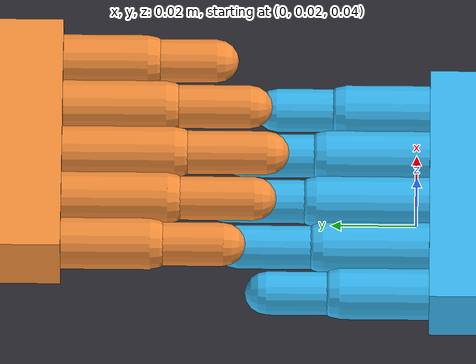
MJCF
<mujoco model="amazinghand_5finger_docking_v4">
  <compiler angle="radian" />
  <option gravity="0 0 -9.81" timestep="0.002" />

  <default>
    <geom density="600" friction="1.0 0.02 0.001" solref="0.005 1" solimp="0.98 0.995 0.0003" />
    <joint damping="0.15" frictionloss="0.01" />
  </default>

  <worldbody>
    <light name="light_top" pos="0 0 1.2" dir="0 0 -1" diffuse="0.8 0.8 0.8" directional="true" />
    <light name="light_side" pos="0.8 -0.6 0.6" dir="-0.8 0.6 -0.4" diffuse="0.5 0.5 0.5" directional="true" />
    <camera name="cam_dock" mode="fixed" pos="0.55 -0.55 0.35" xyaxes="0.707 0.707 0 -0.25 0.25 0.935" />

    <geom name="floor" type="plane" size="1 1 0.01" pos="0 0 -0.15" rgba="0.15 0.15 0.18 1" contype="0" conaffinity="0" />

    <body name="obstacle" mocap="true" pos="0 5 0.05">
      <geom name="obstacle_geom" type="box" size="0.06 0.004 0.05" rgba="0.9 0.25 0.2 0.55" />
    </body>

    <body name="handA_wrist" pos="0 0 0.05">
      <joint name="handA_approach" type="slide" axis="0 1 0" damping="1.0" />
      <inertial pos="0 0 0" mass="0.35" diaginertia="0.0006 0.0006 0.0006" />
      <geom name="handA_palm" type="box" size="0.032 0.017 0.008" rgba="0.22 0.74 0.97 1" />
      <body name="handA_finger_thumb" pos="-0.026 0.017 0">
        <joint name="handA_thumb_mcp" type="hinge" axis="1 0 0" range="0 1.7" />
        <geom name="handA_thumb_prox_geom" type="capsule" fromto="0 0 0 0 0.0209 0" size="0.006" rgba="0.22 0.74 0.97 1" />
        <body name="handA_thumb_distal" pos="0 0.0209 0">
          <joint name="handA_thumb_pip" type="hinge" axis="1 0 0" range="0 1.7" />
          <geom name="handA_thumb_dist_geom" type="capsule" fromto="0 0 0 0 0.0171 0" size="0.0051" rgba="0.22 0.74 0.97 1" />
        </body>
      </body>
      <body name="handA_finger_index" pos="-0.013 0.017 0">
        <joint name="handA_index_mcp" type="hinge" axis="1 0 0" range="0 1.7" />
        <geom name="handA_index_prox_geom" type="capsule" fromto="0 0 0 0 0.0248 0" size="0.006" rgba="0.22 0.74 0.97 1" />
        <body name="handA_index_distal" pos="0 0.0248 0">
          <joint name="handA_index_pip" type="hinge" axis="1 0 0" range="0 1.7" />
          <geom name="handA_index_dist_geom" type="capsule" fromto="0 0 0 0 0.0203 0" size="0.0051" rgba="0.22 0.74 0.97 1" />
        </body>
      </body>
      <body name="handA_finger_middle" pos="0.0 0.017 0">
        <joint name="handA_middle_mcp" type="hinge" axis="1 0 0" range="0 1.7" />
        <geom name="handA_middle_prox_geom" type="capsule" fromto="0 0 0 0 0.0264 0" size="0.006" rgba="0.22 0.74 0.97 1" />
        <body name="handA_middle_distal" pos="0 0.0264 0">
          <joint name="handA_middle_pip" type="hinge" axis="1 0 0" range="0 1.7" />
          <geom name="handA_middle_dist_geom" type="capsule" fromto="0 0 0 0 0.0216 0" size="0.0051" rgba="0.22 0.74 0.97 1" />
        </body>
      </body>
      <body name="handA_finger_ring" pos="0.013 0.017 0">
        <joint name="handA_ring_mcp" type="hinge" axis="1 0 0" range="0 1.7" />
        <geom name="handA_ring_prox_geom" type="capsule" fromto="0 0 0 0 0.0242 0" size="0.006" rgba="0.22 0.74 0.97 1" />
        <body name="handA_ring_distal" pos="0 0.0242 0">
          <joint name="handA_ring_pip" type="hinge" axis="1 0 0" range="0 1.7" />
          <geom name="handA_ring_dist_geom" type="capsule" fromto="0 0 0 0 0.0198 0" size="0.0051" rgba="0.22 0.74 0.97 1" />
        </body>
      </body>
      <body name="handA_finger_pinky" pos="0.026 0.017 0">
        <joint name="handA_pinky_mcp" type="hinge" axis="1 0 0" range="0 1.7" />
        <geom name="handA_pinky_prox_geom" type="capsule" fromto="0 0 0 0 0.0198 0" size="0.006" rgba="0.22 0.74 0.97 1" />
        <body name="handA_pinky_distal" pos="0 0.0198 0">
          <joint name="handA_pinky_pip" type="hinge" axis="1 0 0" range="0 1.7" />
          <geom name="handA_pinky_dist_geom" type="capsule" fromto="0 0 0 0 0.0162 0" size="0.0051" rgba="0.22 0.74 0.97 1" />
        </body>
      </body>
    </body>

    <body name="handB_wrist" pos="0 0.12 0.070" euler="3.14159 0 0">
      <joint name="handB_approach" type="slide" axis="0 1 0" damping="1.0" />
      <joint name="handB_lateral" type="slide" axis="1 0 0" damping="1.0" />
      <joint name="handB_height" type="slide" axis="0 0 1" damping="1.0" />
      <inertial pos="0 0 0" mass="0.35" diaginertia="0.0006 0.0006 0.0006" />
      <geom name="handB_palm" type="box" size="0.032 0.017 0.008" rgba="0.98 0.57 0.23 1" />
      <body name="handB_finger_thumb" pos="-0.026 0.017 0">
        <joint name="handB_thumb_mcp" type="hinge" axis="1 0 0" range="0 1.7" />
        <geom name="handB_thumb_prox_geom" type="capsule" fromto="0 0 0 0 0.0209 0" size="0.006" rgba="0.98 0.57 0.23 1" />
        <body name="handB_thumb_distal" pos="0 0.0209 0">
          <joint name="handB_thumb_pip" type="hinge" axis="1 0 0" range="0 1.7" />
          <geom name="handB_thumb_dist_geom" type="capsule" fromto="0 0 0 0 0.0171 0" size="0.0051" rgba="0.98 0.57 0.23 1" />
        </body>
      </body>
      <body name="handB_finger_index" pos="-0.013 0.017 0">
        <joint name="handB_index_mcp" type="hinge" axis="1 0 0" range="0 1.7" />
        <geom name="handB_index_prox_geom" type="capsule" fromto="0 0 0 0 0.0248 0" size="0.006" rgba="0.98 0.57 0.23 1" />
        <body name="handB_index_distal" pos="0 0.0248 0">
          <joint name="handB_index_pip" type="hinge" axis="1 0 0" range="0 1.7" />
          <geom name="handB_index_dist_geom" type="capsule" fromto="0 0 0 0 0.0203 0" size="0.0051" rgba="0.98 0.57 0.23 1" />
        </body>
      </body>
      <body name="handB_finger_middle" pos="0.0 0.017 0">
        <joint name="handB_middle_mcp" type="hinge" axis="1 0 0" range="0 1.7" />
        <geom name="handB_middle_prox_geom" type="capsule" fromto="0 0 0 0 0.0264 0" size="0.006" rgba="0.98 0.57 0.23 1" />
        <body name="handB_middle_distal" pos="0 0.0264 0">
          <joint name="handB_middle_pip" type="hinge" axis="1 0 0" range="0 1.7" />
          <geom name="handB_middle_dist_geom" type="capsule" fromto="0 0 0 0 0.0216 0" size="0.0051" rgba="0.98 0.57 0.23 1" />
        </body>
      </body>
      <body name="handB_finger_ring" pos="0.013 0.017 0">
        <joint name="handB_ring_mcp" type="hinge" axis="1 0 0" range="0 1.7" />
        <geom name="handB_ring_prox_geom" type="capsule" fromto="0 0 0 0 0.0242 0" size="0.006" rgba="0.98 0.57 0.23 1" />
        <body name="handB_ring_distal" pos="0 0.0242 0">
          <joint name="handB_ring_pip" type="hinge" axis="1 0 0" range="0 1.7" />
          <geom name="handB_ring_dist_geom" type="capsule" fromto="0 0 0 0 0.0198 0" size="0.0051" rgba="0.98 0.57 0.23 1" />
        </body>
      </body>
      <body name="handB_finger_pinky" pos="0.026 0.017 0">
        <joint name="handB_pinky_mcp" type="hinge" axis="1 0 0" range="0 1.7" />
        <geom name="handB_pinky_prox_geom" type="capsule" fromto="0 0 0 0 0.0198 0" size="0.006" rgba="0.98 0.57 0.23 1" />
        <body name="handB_pinky_distal" pos="0 0.0198 0">
          <joint name="handB_pinky_pip" type="hinge" axis="1 0 0" range="0 1.7" />
          <geom name="handB_pinky_dist_geom" type="capsule" fromto="0 0 0 0 0.0162 0" size="0.0051" rgba="0.98 0.57 0.23 1" />
        </body>
      </body>
    </body>
  </worldbody>

  <contact>
    <exclude body1="handA_finger_thumb" body2="handA_thumb_distal" />
    <exclude body1="handA_finger_index" body2="handA_index_distal" />
    <exclude body1="handA_finger_middle" body2="handA_middle_distal" />
    <exclude body1="handA_finger_ring" body2="handA_ring_distal" />
    <exclude body1="handA_finger_pinky" body2="handA_pinky_distal" />
    <exclude body1="handB_finger_thumb" body2="handB_thumb_distal" />
    <exclude body1="handB_finger_index" body2="handB_index_distal" />
    <exclude body1="handB_finger_middle" body2="handB_middle_distal" />
    <exclude body1="handB_finger_ring" body2="handB_ring_distal" />
    <exclude body1="handB_finger_pinky" body2="handB_pinky_distal" />
  </contact>

  <actuator>
    <general name="handA_approach_ctrl" joint="handA_approach" ctrllimited="true" ctrlrange="-5 5" />
    <general name="handA_thumb_mcp_ctrl" joint="handA_thumb_mcp" ctrllimited="true" ctrlrange="-2 2" />
    <general name="handA_thumb_pip_ctrl" joint="handA_thumb_pip" ctrllimited="true" ctrlrange="-2 2" />
    <general name="handA_index_mcp_ctrl" joint="handA_index_mcp" ctrllimited="true" ctrlrange="-2 2" />
    <general name="handA_index_pip_ctrl" joint="handA_index_pip" ctrllimited="true" ctrlrange="-2 2" />
    <general name="handA_middle_mcp_ctrl" joint="handA_middle_mcp" ctrllimited="true" ctrlrange="-2 2" />
    <general name="handA_middle_pip_ctrl" joint="handA_middle_pip" ctrllimited="true" ctrlrange="-2 2" />
    <general name="handA_ring_mcp_ctrl" joint="handA_ring_mcp" ctrllimited="true" ctrlrange="-2 2" />
    <general name="handA_ring_pip_ctrl" joint="handA_ring_pip" ctrllimited="true" ctrlrange="-2 2" />
    <general name="handA_pinky_mcp_ctrl" joint="handA_pinky_mcp" ctrllimited="true" ctrlrange="-2 2" />
    <general name="handA_pinky_pip_ctrl" joint="handA_pinky_pip" ctrllimited="true" ctrlrange="-2 2" />
    <general name="handB_approach_ctrl" joint="handB_approach" ctrllimited="true" ctrlrange="-5 5" />
    <general name="handB_lateral_ctrl" joint="handB_lateral" ctrllimited="true" ctrlrange="-5 5" />
    <general name="handB_height_ctrl" joint="handB_height" ctrllimited="true" ctrlrange="-5 5" />
    <general name="handB_thumb_mcp_ctrl" joint="handB_thumb_mcp" ctrllimited="true" ctrlrange="-2 2" />
    <general name="handB_thumb_pip_ctrl" joint="handB_thumb_pip" ctrllimited="true" ctrlrange="-2 2" />
    <general name="handB_index_mcp_ctrl" joint="handB_index_mcp" ctrllimited="true" ctrlrange="-2 2" />
    <general name="handB_index_pip_ctrl" joint="handB_index_pip" ctrllimited="true" ctrlrange="-2 2" />
    <general name="handB_middle_mcp_ctrl" joint="handB_middle_mcp" ctrllimited="true" ctrlrange="-2 2" />
    <general name="handB_middle_pip_ctrl" joint="handB_middle_pip" ctrllimited="true" ctrlrange="-2 2" />
    <general name="handB_ring_mcp_ctrl" joint="handB_ring_mcp" ctrllimited="true" ctrlrange="-2 2" />
    <general name="handB_ring_pip_ctrl" joint="handB_ring_pip" ctrllimited="true" ctrlrange="-2 2" />
    <general name="handB_pinky_mcp_ctrl" joint="handB_pinky_mcp" ctrllimited="true" ctrlrange="-2 2" />
    <general name="handB_pinky_pip_ctrl" joint="handB_pinky_pip" ctrllimited="true" ctrlrange="-2 2" />
  </actuator>
</mujoco>
